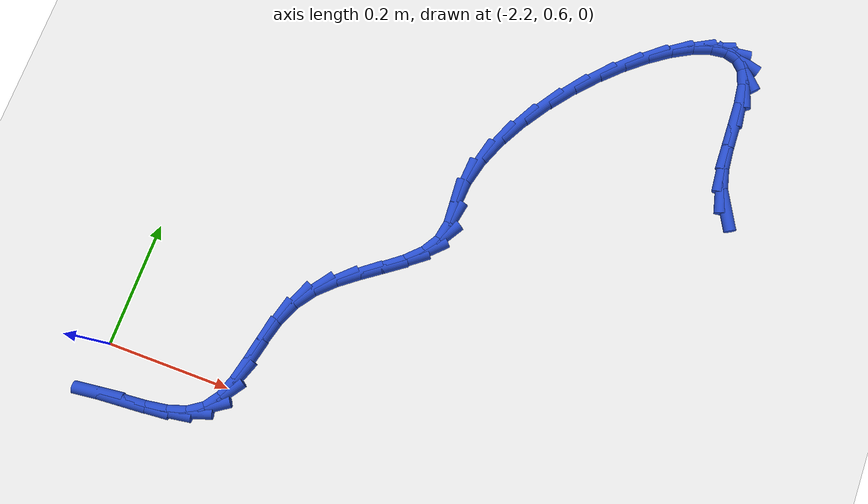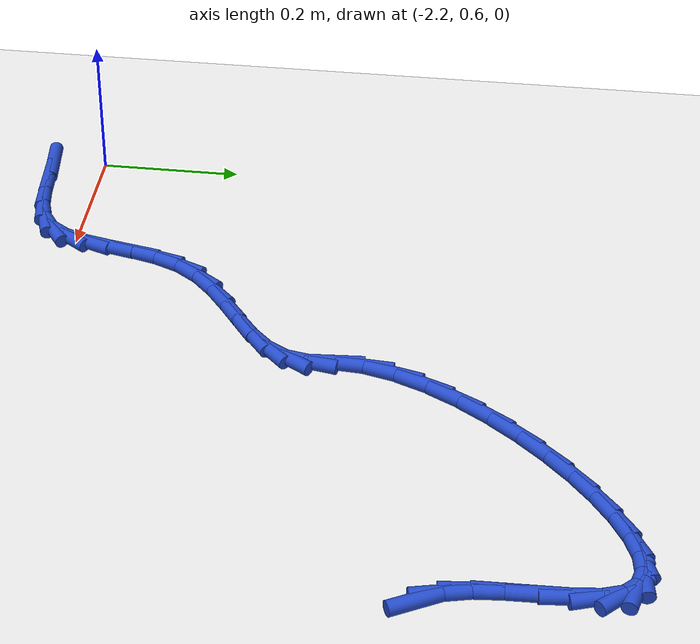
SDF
<sdf version="1.6">
 <world name="default">
  <model name="ground_plane">
   <static>1</static>
   <link name="link">
    <collision name="collision">
     <geometry><plane><normal>0 0 1</normal><size>100 100</size></plane></geometry>
     <surface><friction><ode><mu>100</mu><mu2>50</mu2></ode></friction></surface>
    </collision>
    <visual name="visual">
     <cast_shadows>0</cast_shadows>
     <geometry><plane><normal>0 0 1</normal><size>100 100</size></plane></geometry>
     <material>
      <script><uri>file://media/materials/scripts/gazebo.material</uri><name>Gazebo/WhiteGlow</name></script>
     </material>
    </visual>
   </link>
  </model>
  <model name="line">
   <link name="link_65">
    <pose>-1.3588940685000401 1.1421953035099306 0.01 0 1.57 -1.0799490202316058</pose>
    <collision name="collision">
     <geometry><cylinder><radius>0.01</radius><length>0.08</length></cylinder></geometry>
    </collision>
    <visual name="visual">
     <material>
      <script><name>Gazebo/Blue</name><uri>file://media/materials/scripts/gazebo.material</uri></script>
     </material>
     <geometry><cylinder><radius>0.01</radius><length>0.08</length></cylinder></geometry>
    </visual>
   </link>
   <link name="link_66">
    <pose>-1.3728194775335463 1.168249574989542 0.01 0 1.57 -1.336588557436155</pose>
    <collision name="collision">
     <geometry><cylinder><radius>0.01</radius><length>0.08</length></cylinder></geometry>
    </collision>
    <visual name="visual">
     <material>
      <script><name>Gazebo/Blue</name><uri>file://media/materials/scripts/gazebo.material</uri></script>
     </material>
     <geometry><cylinder><radius>0.01</radius><length>0.08</length></cylinder></geometry>
    </visual>
   </link>
   <link name="link_67">
    <pose>-1.380657377126296 1.2011010098026282 0.01 0 1.57 -1.484229218032587</pose>
    <collision name="collision">
     <geometry><cylinder><radius>0.01</radius><length>0.08</length></cylinder></geometry>
    </collision>
    <visual name="visual">
     <material>
      <script><name>Gazebo/Blue</name><uri>file://media/materials/scripts/gazebo.material</uri></script>
     </material>
     <geometry><cylinder><radius>0.01</radius><length>0.08</length></cylinder></geometry>
    </visual>
   </link>
   <link name="link_68">
    <pose>-1.3839195719427344 1.2386908285440446 0.01 0 1.57 -1.5442652184948247</pose>
    <collision name="collision">
     <geometry><cylinder><radius>0.01</radius><length>0.08</length></cylinder></geometry>
    </collision>
    <visual name="visual">
     <material>
      <script><name>Gazebo/Blue</name><uri>file://media/materials/scripts/gazebo.material</uri></script>
     </material>
     <geometry><cylinder><radius>0.01</radius><length>0.08</length></cylinder></geometry>
    </visual>
   </link>
   <link name="link_69">
    <pose>-1.3849599616584718 1.277895583298785 0.01 0 1.57 -1.5395930677860716</pose>
    <collision name="collision">
     <geometry><cylinder><radius>0.01</radius><length>0.08</length></cylinder></geometry>
    </collision>
    <visual name="visual">
     <material>
      <script><name>Gazebo/Blue</name><uri>file://media/materials/scripts/gazebo.material</uri></script>
     </material>
     <geometry><cylinder><radius>0.01</radius><length>0.08</length></cylinder></geometry>
    </visual>
   </link>
   <link name="link_70">
    <pose>-1.3861364318859974 1.3155867866949904 0.01 0 1.57 -1.4601897095593988</pose>
    <collision name="collision">
     <geometry><cylinder><radius>0.01</radius><length>0.08</length></cylinder></geometry>
    </collision>
    <visual name="visual">
     <material>
      <script><name>Gazebo/Blue</name><uri>file://media/materials/scripts/gazebo.material</uri></script>
     </material>
     <geometry><cylinder><radius>0.01</radius><length>0.08</length></cylinder></geometry>
    </visual>
   </link>
   <link name="link_71">
    <pose>-1.3898068682378004 1.3486359513608008 0.01 0 1.57 -1.2456509311819224</pose>
    <collision name="collision">
     <geometry><cylinder><radius>0.01</radius><length>0.08</length></cylinder></geometry>
    </collision>
    <visual name="visual">
     <material>
      <script><name>Gazebo/Blue</name><uri>file://media/materials/scripts/gazebo.material</uri></script>
     </material>
     <geometry><cylinder><radius>0.01</radius><length>0.08</length></cylinder></geometry>
    </visual>
   </link>
   <link name="link_72">
    <pose>-1.398328717146815 1.3739151104699536 0.01 0 1.57 -0.7938701733356343</pose>
    <collision name="collision">
     <geometry><cylinder><radius>0.01</radius><length>0.08</length></cylinder></geometry>
    </collision>
    <visual name="visual">
     <material>
      <script><name>Gazebo/Blue</name><uri>file://media/materials/scripts/gazebo.material</uri></script>
     </material>
     <geometry><cylinder><radius>0.01</radius><length>0.08</length></cylinder></geometry>
    </visual>
   </link>
   <link name="link_73">
    <pose>-1.4133246004164126 1.3891672615181339 0.01 0 1.57 -0.26312909683974106</pose>
    <collision name="collision">
     <geometry><cylinder><radius>0.01</radius><length>0.08</length></cylinder></geometry>
    </collision>
    <visual name="visual">
     <material>
      <script><name>Gazebo/Blue</name><uri>file://media/materials/scripts/gazebo.material</uri></script>
     </material>
     <geometry><cylinder><radius>0.01</radius><length>0.08</length></cylinder></geometry>
    </visual>
   </link>
   <link name="link_74">
    <pose>-1.4341812584771465 1.3947855212614662 0.01 0 1.57 0.1209123126619755</pose>
    <collision name="collision">
     <geometry><cylinder><radius>0.01</radius><length>0.08</length></cylinder></geometry>
    </collision>
    <visual name="visual">
     <material>
      <script><name>Gazebo/Blue</name><uri>file://media/materials/scripts/gazebo.material</uri></script>
     </material>
     <geometry><cylinder><radius>0.01</radius><length>0.08</length></cylinder></geometry>
    </visual>
   </link>
   <link name="link_75">
    <pose>-1.4598617220685084 1.3916652161111822 0.01 0 1.57 0.3561888607667264</pose>
    <collision name="collision">
     <geometry><cylinder><radius>0.01</radius><length>0.08</length></cylinder></geometry>
    </collision>
    <visual name="visual">
     <material>
      <script><name>Gazebo/Blue</name><uri>file://media/materials/scripts/gazebo.material</uri></script>
     </material>
     <geometry><cylinder><radius>0.01</radius><length>0.08</length></cylinder></geometry>
    </visual>
   </link>
   <link name="link_76">
    <pose>-1.489329021929991 1.3807016724785175 0.01 0 1.57 0.5074074986875992</pose>
    <collision name="collision">
     <geometry><cylinder><radius>0.01</radius><length>0.08</length></cylinder></geometry>
    </collision>
    <visual name="visual">
     <material>
      <script><name>Gazebo/Blue</name><uri>file://media/materials/scripts/gazebo.material</uri></script>
     </material>
     <geometry><cylinder><radius>0.01</radius><length>0.08</length></cylinder></geometry>
    </visual>
   </link>
   <link name="link_77">
    <pose>-1.521546188801086 1.362790216774704 0.01 0 1.57 0.6149266413209143</pose>
    <collision name="collision">
     <geometry><cylinder><radius>0.01</radius><length>0.08</length></cylinder></geometry>
    </collision>
    <visual name="visual">
     <material>
      <script><name>Gazebo/Blue</name><uri>file://media/materials/scripts/gazebo.material</uri></script>
     </material>
     <geometry><cylinder><radius>0.01</radius><length>0.08</length></cylinder></geometry>
    </visual>
   </link>
   <link name="link_78">
    <pose>-1.5554762534212863 1.338826175410977 0.01 0 1.57 0.6995446775789209</pose>
    <collision name="collision">
     <geometry><cylinder><radius>0.01</radius><length>0.08</length></cylinder></geometry>
    </collision>
    <visual name="visual">
     <material>
      <script><name>Gazebo/Blue</name><uri>file://media/materials/scripts/gazebo.material</uri></script>
     </material>
     <geometry><cylinder><radius>0.01</radius><length>0.08</length></cylinder></geometry>
    </visual>
   </link>
   <link name="link_79">
    <pose>-1.5900822465300835 1.3097048747985687 0.01 0 1.57 0.7726568448824439</pose>
    <collision name="collision">
     <geometry><cylinder><radius>0.01</radius><length>0.08</length></cylinder></geometry>
    </collision>
    <visual name="visual">
     <material>
      <script><name>Gazebo/Blue</name><uri>file://media/materials/scripts/gazebo.material</uri></script>
     </material>
     <geometry><cylinder><radius>0.01</radius><length>0.08</length></cylinder></geometry>
    </visual>
   </link>
   <link name="link_80">
    <pose>-1.6243271988669696 1.2763216413487133 0.01 0 1.57 0.8414181954553873</pose>
    <collision name="collision">
     <geometry><cylinder><radius>0.01</radius><length>0.08</length></cylinder></geometry>
    </collision>
    <visual name="visual">
     <material>
      <script><name>Gazebo/Blue</name><uri>file://media/materials/scripts/gazebo.material</uri></script>
     </material>
     <geometry><cylinder><radius>0.01</radius><length>0.08</length></cylinder></geometry>
    </visual>
   </link>
   <link name="link_81">
    <pose>-1.6571741411714378 1.2395718014726445 0.01 0 1.57 0.9112378909116212</pose>
    <collision name="collision">
     <geometry><cylinder><radius>0.01</radius><length>0.08</length></cylinder></geometry>
    </collision>
    <visual name="visual">
     <material>
      <script><name>Gazebo/Blue</name><uri>file://media/materials/scripts/gazebo.material</uri></script>
     </material>
     <geometry><cylinder><radius>0.01</radius><length>0.08</length></cylinder></geometry>
    </visual>
   </link>
   <link name="link_82">
    <pose>-1.6875861041829796 1.2003506815815956 0.01 0 1.57 0.987185242803593</pose>
    <collision name="collision">
     <geometry><cylinder><radius>0.01</radius><length>0.08</length></cylinder></geometry>
    </collision>
    <visual name="visual">
     <material>
      <script><name>Gazebo/Blue</name><uri>file://media/materials/scripts/gazebo.material</uri></script>
     </material>
     <geometry><cylinder><radius>0.01</radius><length>0.08</length></cylinder></geometry>
    </visual>
   </link>
   <link name="link_83">
    <pose>-1.7145261186410874 1.1595536080868005 0.01 0 1.57 1.0750447023632361</pose>
    <collision name="collision">
     <geometry><cylinder><radius>0.01</radius><length>0.08</length></cylinder></geometry>
    </collision>
    <visual name="visual">
     <material>
      <script><name>Gazebo/Blue</name><uri>file://media/materials/scripts/gazebo.material</uri></script>
     </material>
     <geometry><cylinder><radius>0.01</radius><length>0.08</length></cylinder></geometry>
    </visual>
   </link>
   <link name="link_84">
    <pose>-1.736957215285253 1.1180759073994926 0.01 0 1.57 1.1823760780540842</pose>
    <collision name="collision">
     <geometry><cylinder><radius>0.01</radius><length>0.08</length></cylinder></geometry>
    </collision>
    <visual name="visual">
     <material>
      <script><name>Gazebo/Blue</name><uri>file://media/materials/scripts/gazebo.material</uri></script>
     </material>
     <geometry><cylinder><radius>0.01</radius><length>0.08</length></cylinder></geometry>
    </visual>
   </link>
   <link name="link_85">
    <pose>-1.7538424248549696 1.0768129059309062 0.01 0 1.57 1.3196366482996171</pose>
    <collision name="collision">
     <geometry><cylinder><radius>0.01</radius><length>0.08</length></cylinder></geometry>
    </collision>
    <visual name="visual">
     <material>
      <script><name>Gazebo/Blue</name><uri>file://media/materials/scripts/gazebo.material</uri></script>
     </material>
     <geometry><cylinder><radius>0.01</radius><length>0.08</length></cylinder></geometry>
    </visual>
   </link>
   <link name="link_86">
    <pose>-1.7641447780897284 1.036659930092274 0.01 0 1.57 1.5005650287009762</pose>
    <collision name="collision">
     <geometry><cylinder><radius>0.01</radius><length>0.08</length></cylinder></geometry>
    </collision>
    <visual name="visual">
     <material>
      <script><name>Gazebo/Blue</name><uri>file://media/materials/scripts/gazebo.material</uri></script>
     </material>
     <geometry><cylinder><radius>0.01</radius><length>0.08</length></cylinder></geometry>
    </visual>
   </link>
   <link name="link_87">
    <pose>-1.7668283448992332 0.9985123625899606 0.01 0 1.57 -1.5071533113617588</pose>
    <collision name="collision">
     <geometry><cylinder><radius>0.01</radius><length>0.08</length></cylinder></geometry>
    </collision>
    <visual name="visual">
     <material>
      <script><name>Gazebo/Blue</name><uri>file://media/materials/scripts/gazebo.material</uri></script>
     </material>
     <geometry><cylinder><radius>0.01</radius><length>0.08</length></cylinder></geometry>
    </visual>
   </link>
   <link name="link_88">
    <pose>-1.7645950046208843 0.9634680750652417 0.01 0 1.57 1.3844022740998279</pose>
    <collision name="collision">
     <geometry><cylinder><radius>0.01</radius><length>0.08</length></cylinder></geometry>
    </collision>
    <visual name="visual">
     <material>
      <script><name>Gazebo/Blue</name><uri>file://media/materials/scripts/gazebo.material</uri></script>
     </material>
     <geometry><cylinder><radius>0.01</radius><length>0.08</length></cylinder></geometry>
    </visual>
   </link>
   <link name="link_89">
    <pose>-1.7703463919446008 0.9329701802387054 0.01 0 1.57 1.0200648399656231</pose>
    <collision name="collision">
     <geometry><cylinder><radius>0.01</radius><length>0.08</length></cylinder></geometry>
    </collision>
    <visual name="visual">
     <material>
      <script><name>Gazebo/Blue</name><uri>file://media/materials/scripts/gazebo.material</uri></script>
     </material>
     <geometry><cylinder><radius>0.01</radius><length>0.08</length></cylinder></geometry>
    </visual>
   </link>
   <link name="link_90">
    <pose>-1.7865872356116541 0.9065241238334699 0.01 0 1.57 0.779707112260015</pose>
    <collision name="collision">
     <geometry><cylinder><radius>0.01</radius><length>0.08</length></cylinder></geometry>
    </collision>
    <visual name="visual">
     <material>
      <script><name>Gazebo/Blue</name><uri>file://media/materials/scripts/gazebo.material</uri></script>
     </material>
     <geometry><cylinder><radius>0.01</radius><length>0.08</length></cylinder></geometry>
    </visual>
   </link>
   <link name="link_91">
    <pose>-1.8105903977125244 0.8827926250615441 0.01 0 1.57 0.6563706105303194</pose>
    <collision name="collision">
     <geometry><cylinder><radius>0.01</radius><length>0.08</length></cylinder></geometry>
    </collision>
    <visual name="visual">
     <material>
      <script><name>Gazebo/Blue</name><uri>file://media/materials/scripts/gazebo.material</uri></script>
     </material>
     <geometry><cylinder><radius>0.01</radius><length>0.08</length></cylinder></geometry>
    </visual>
   </link>
   <link name="link_92">
    <pose>-1.839613516467244 0.8604359509395572 0.01 0 1.57 0.6194860113794565</pose>
    <collision name="collision">
     <geometry><cylinder><radius>0.01</radius><length>0.08</length></cylinder></geometry>
    </collision>
    <visual name="visual">
     <material>
      <script><name>Gazebo/Blue</name><uri>file://media/materials/scripts/gazebo.material</uri></script>
     </material>
     <geometry><cylinder><radius>0.01</radius><length>0.08</length></cylinder></geometry>
    </visual>
   </link>
   <link name="link_93">
    <pose>-1.8709142300958452 0.8381143684841385 0.01 0 1.57 0.6537830533435841</pose>
    <collision name="collision">
     <geometry><cylinder><radius>0.01</radius><length>0.08</length></cylinder></geometry>
    </collision>
    <visual name="visual">
     <material>
      <script><name>Gazebo/Blue</name><uri>file://media/materials/scripts/gazebo.material</uri></script>
     </material>
     <geometry><cylinder><radius>0.01</radius><length>0.08</length></cylinder></geometry>
    </visual>
   </link>
   <link name="link_94">
    <pose>-1.9017501768183602 0.8144881447119172 0.01 0 1.57 0.7602043360284472</pose>
    <collision name="collision">
     <geometry><cylinder><radius>0.01</radius><length>0.08</length></cylinder></geometry>
    </collision>
    <visual name="visual">
     <material>
      <script><name>Gazebo/Blue</name><uri>file://media/materials/scripts/gazebo.material</uri></script>
     </material>
     <geometry><cylinder><radius>0.01</radius><length>0.08</length></cylinder></geometry>
    </visual>
   </link>
   <link name="link_95">
    <pose>-1.9293789948548232 0.788217546639523 0.01 0 1.57 0.9485891438606597</pose>
    <collision name="collision">
     <geometry><cylinder><radius>0.01</radius><length>0.08</length></cylinder></geometry>
    </collision>
    <visual name="visual">
     <material>
      <script><name>Gazebo/Blue</name><uri>file://media/materials/scripts/gazebo.material</uri></script>
     </material>
     <geometry><cylinder><radius>0.01</radius><length>0.08</length></cylinder></geometry>
    </visual>
   </link>
   <link name="link_96">
    <pose>-1.951072382542441 0.757972168913234 0.01 0 1.57 1.1671056768256212</pose>
    <collision name="collision">
     <geometry><cylinder><radius>0.01</radius><length>0.08</length></cylinder></geometry>
    </collision>
    <visual name="visual">
     <material>
      <script><name>Gazebo/Blue</name><uri>file://media/materials/scripts/gazebo.material</uri></script>
     </material>
     <geometry><cylinder><radius>0.01</radius><length>0.08</length></cylinder></geometry>
    </visual>
   </link>
   <link name="link_97">
    <pose>-1.9657818121222517 0.7235359858586077 0.01 0 1.57 1.3065129747284487</pose>
    <collision name="collision">
     <geometry><cylinder><radius>0.01</radius><length>0.08</length></cylinder></geometry>
    </collision>
    <visual name="visual">
     <material>
      <script><name>Gazebo/Blue</name><uri>file://media/materials/scripts/gazebo.material</uri></script>
     </material>
     <geometry><cylinder><radius>0.01</radius><length>0.08</length></cylinder></geometry>
    </visual>
   </link>
   <link name="link_98">
    <pose>-1.975709626151762 0.6868496333688021 0.01 0 1.57 1.3637227820613078</pose>
    <collision name="collision">
     <geometry><cylinder><radius>0.01</radius><length>0.08</length></cylinder></geometry>
    </collision>
    <visual name="visual">
     <material>
      <script><name>Gazebo/Blue</name><uri>file://media/materials/scripts/gazebo.material</uri></script>
     </material>
     <geometry><cylinder><radius>0.01</radius><length>0.08</length></cylinder></geometry>
    </visual>
   </link>
   <link name="link_99">
    <pose>-1.983430071390944 0.6501004724973801 0.01 0 1.57 1.3413384940563606</pose>
    <collision name="collision">
     <geometry><cylinder><radius>0.01</radius><length>0.08</length></cylinder></geometry>
    </collision>
    <visual name="visual">
     <material>
      <script><name>Gazebo/Blue</name><uri>file://media/materials/scripts/gazebo.material</uri></script>
     </material>
     <geometry><cylinder><radius>0.01</radius><length>0.08</length></cylinder></geometry>
    </visual>
   </link>
   <link name="link_100">
    <pose>-1.9915173945997675 0.6154758642979034 0.01 0 1.57 1.2218607122678062</pose>
    <collision name="collision">
     <geometry><cylinder><radius>0.01</radius><length>0.08</length></cylinder></geometry>
    </collision>
    <visual name="visual">
     <material>
      <script><name>Gazebo/Blue</name><uri>file://media/materials/scripts/gazebo.material</uri></script>
     </material>
     <geometry><cylinder><radius>0.01</radius><length>0.08</length></cylinder></geometry>
    </visual>
   </link>
   <link name="link_101">
    <pose>-2.002545842538205 0.585163169823934 0.01 0 1.57 0.9636322883359695</pose>
    <collision name="collision">
     <geometry><cylinder><radius>0.01</radius><length>0.08</length></cylinder></geometry>
    </collision>
    <visual name="visual">
     <material>
      <script><name>Gazebo/Blue</name><uri>file://media/materials/scripts/gazebo.material</uri></script>
     </material>
     <geometry><cylinder><radius>0.01</radius><length>0.08</length></cylinder></geometry>
    </visual>
   </link>
   <link name="link_102">
    <pose>-2.0190893698409105 0.5613494565497917 0.01 0 1.57 0.5924474861719577</pose>
    <collision name="collision">
     <geometry><cylinder><radius>0.01</radius><length>0.08</length></cylinder></geometry>
    </collision>
    <visual name="visual">
     <material>
      <script><name>Gazebo/Blue</name><uri>file://media/materials/scripts/gazebo.material</uri></script>
     </material>
     <geometry><cylinder><radius>0.01</radius><length>0.08</length></cylinder></geometry>
    </visual>
   </link>
   <link name="link_103">
    <pose>-2.0428562621858846 0.5453518145042984 0.01 0 1.57 0.3118624321899144</pose>
    <collision name="collision">
     <geometry><cylinder><radius>0.01</radius><length>0.08</length></cylinder></geometry>
    </collision>
    <visual name="visual">
     <material>
      <script><name>Gazebo/Blue</name><uri>file://media/materials/scripts/gazebo.material</uri></script>
     </material>
     <geometry><cylinder><radius>0.01</radius><length>0.08</length></cylinder></geometry>
    </visual>
   </link>
   <link name="link_104">
    <pose>-2.0727846814168593 0.5357034228014558 0.01 0 1.57 0.15315308571372452</pose>
    <collision name="collision">
     <geometry><cylinder><radius>0.01</radius><length>0.08</length></cylinder></geometry>
    </collision>
    <visual name="visual">
     <material>
      <script><name>Gazebo/Blue</name><uri>file://media/materials/scripts/gazebo.material</uri></script>
     </material>
     <geometry><cylinder><radius>0.01</radius><length>0.08</length></cylinder></geometry>
    </visual>
   </link>
   <link name="link_105">
    <pose>-2.1072598517200523 0.5303817708922544 0.01 0 1.57 0.08049006486650881</pose>
    <collision name="collision">
     <geometry><cylinder><radius>0.01</radius><length>0.08</length></cylinder></geometry>
    </collision>
    <visual name="visual">
     <material>
      <script><name>Gazebo/Blue</name><uri>file://media/materials/scripts/gazebo.material</uri></script>
     </material>
     <geometry><cylinder><radius>0.01</radius><length>0.08</length></cylinder></geometry>
    </visual>
   </link>
   <link name="link_106">
    <pose>-2.144666997281684 0.5273643482276845 0.01 0 1.57 0.07052840874487615</pose>
    <collision name="collision">
     <geometry><cylinder><radius>0.01</radius><length>0.08</length></cylinder></geometry>
    </collision>
    <visual name="visual">
     <material>
      <script><name>Gazebo/Blue</name><uri>file://media/materials/scripts/gazebo.material</uri></script>
     </material>
     <geometry><cylinder><radius>0.01</radius><length>0.08</length></cylinder></geometry>
    </visual>
   </link>
   <link name="link_107">
    <pose>-2.183391342287972 0.5246286442587365 0.01 0 1.57 0.11597147666397947</pose>
    <collision name="collision">
     <geometry><cylinder><radius>0.01</radius><length>0.08</length></cylinder></geometry>
    </collision>
    <visual name="visual">
     <material>
      <script><name>Gazebo/Blue</name><uri>file://media/materials/scripts/gazebo.material</uri></script>
     </material>
     <geometry><cylinder><radius>0.01</radius><length>0.08</length></cylinder></geometry>
    </visual>
   </link>
  </model>
 </world>
</sdf>
